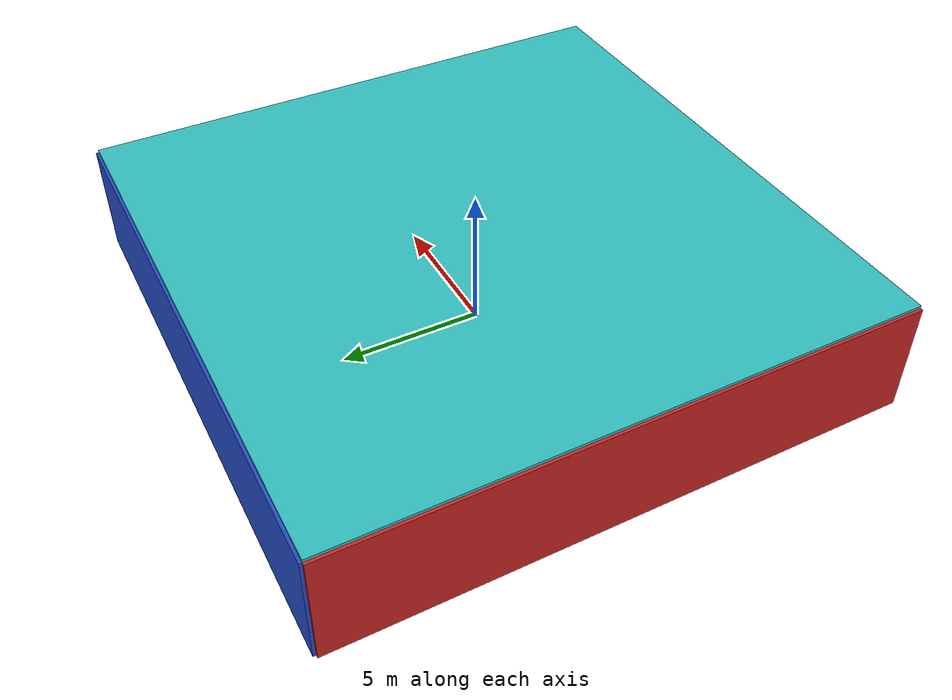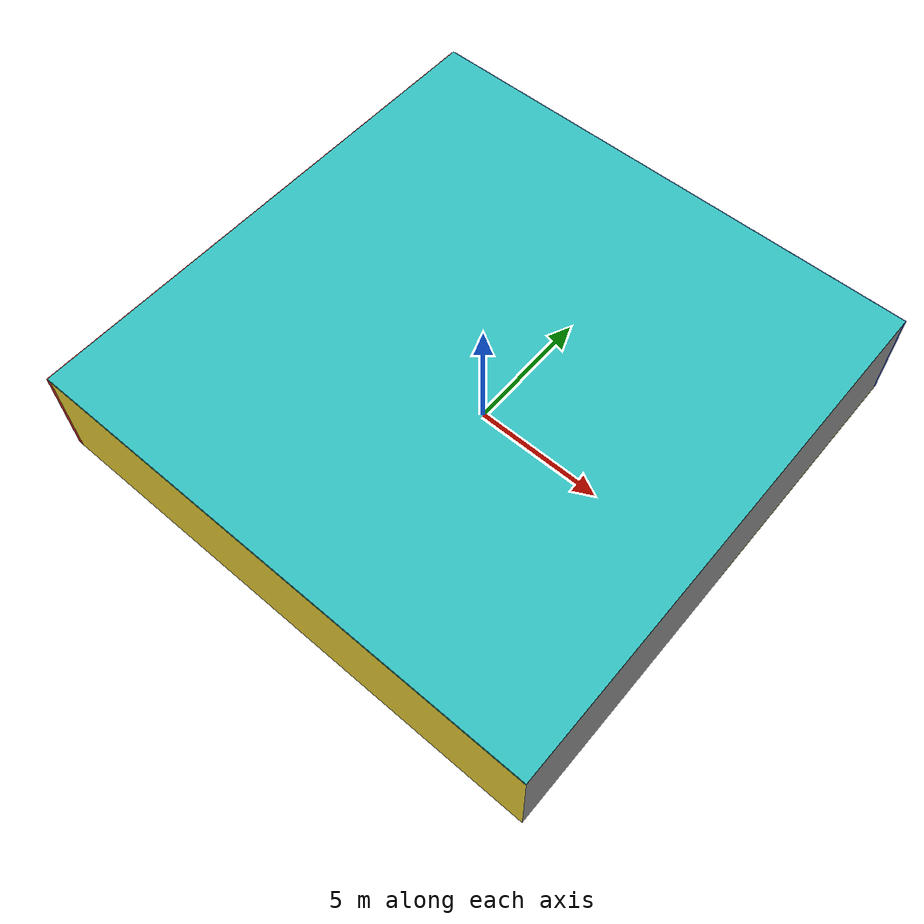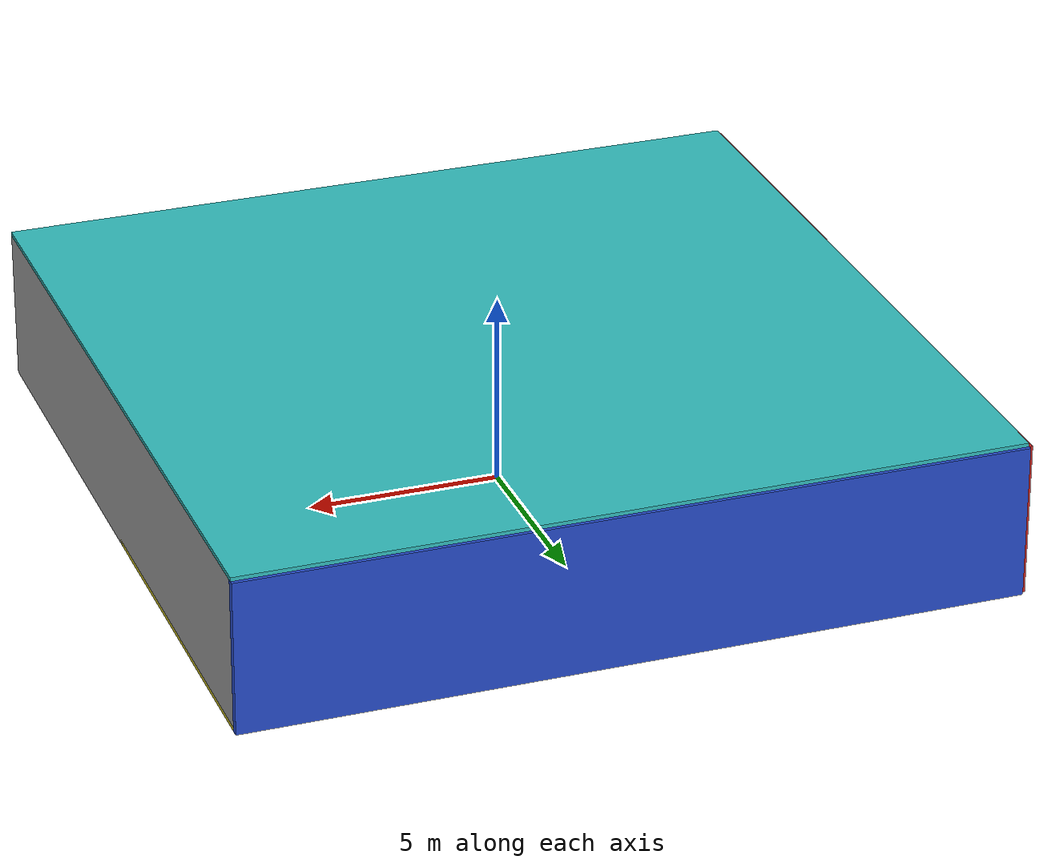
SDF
<sdf version="1.4">
 <world name="default">
  <physics type="ode">
   <max_step_size>0.001</max_step_size>
   <real_time_factor>1</real_time_factor>
   <real_time_update_rate>1000</real_time_update_rate>
   <gravity>0 0 -9.8</gravity>
  </physics>
  <scene><ambient>0.4 0.4 0.4 1</ambient><background>0.7 0.7 0.7 1</background><shadows>1</shadows></scene>
  <model name="Surrounding">
   <static>1</static>
   <link name="Ceiling">
    <collision name="Ceiling_Collision"><geometry><box><size>20 20 0.1</size></box></geometry></collision>
    <visual name="Ceiling_Visual">
     <geometry><box><size>20 20 0.1</size></box></geometry>
     <material>
      <script><uri>file://media/materials/scripts/gazebo.material</uri><name>Gazebo/Turquoise</name></script>
     </material>
    </visual>
    <pose>0 0 4.05 0 0 0</pose>
   </link>
   <link name="Wall_South">
    <collision name="Wall_South_Collision">
     <geometry><box><size>20 0 4</size></box></geometry>
     <pose>0 0 2 0 -0 0</pose>
    </collision>
    <visual name="Wall_South_Visual">
     <pose>0 0 2 0 -0 0</pose>
     <geometry><box><size>20 0 4</size></box></geometry>
     <material>
      <script><uri>file://media/materials/scripts/gazebo.material</uri><name>Gazebo/ZincYellow</name></script>
     </material>
    </visual>
    <velocity_decay><linear>0</linear><angular>0</angular></velocity_decay>
    <pose>0 -10 0 0 -0 0</pose>
   </link>
   <link name="Wall_East">
    <collision name="Wall_21_Collision">
     <geometry><box><size>20 0 4</size></box></geometry>
     <pose>0 0 2 0 -0 0</pose>
    </collision>
    <visual name="Wall_21_Visual">
     <pose>0 0 2 0 -0 0</pose>
     <geometry><box><size>20 0 4</size></box></geometry>
     <material>
      <script><uri>file://media/materials/scripts/gazebo.material</uri><name>Gazebo/GreyGradientSky</name></script>
     </material>
    </visual>
    <velocity_decay><linear>0</linear><angular>0</angular></velocity_decay>
    <pose>10 0 0 0 -0 1.5708</pose>
   </link>
   <link name="Wall_North">
    <collision name="Wall_22_Collision">
     <geometry><box><size>20 0.2 4</size></box></geometry>
     <pose>0 0 2 0 -0 0</pose>
    </collision>
    <visual name="Wall_22_Visual">
     <pose>0 0 2 0 -0 0</pose>
     <geometry><box><size>20 0.2 4</size></box></geometry>
     <material>
      <script><uri>file://media/materials/scripts/gazebo.material</uri><name>Gazebo/BlueLaser</name></script>
     </material>
    </visual>
    <velocity_decay><linear>0</linear><angular>0</angular></velocity_decay>
    <pose>0 10 0 0 -0 0</pose>
   </link>
   <link name="Wall_West">
    <collision name="Wall_23_Collision">
     <geometry><box><size>20 0.2 4</size></box></geometry>
     <pose>0 0 2 0 -0 0</pose>
    </collision>
    <visual name="Wall_23_Visual">
     <pose>0 0 2 0 -0 0</pose>
     <geometry><box><size>20 0.2 4</size></box></geometry>
     <material>
      <script><uri>file://media/materials/scripts/gazebo.material</uri><name>Gazebo/Red</name></script>
     </material>
    </visual>
    <velocity_decay><linear>0</linear><angular>0</angular></velocity_decay>
    <pose>-10 0 0 0 0 -1.5708</pose>
   </link>
   <link name="Ground_link">
    <collision name="collision">
     <pose>0 0 .05 0 -0 0</pose>
     <geometry><box><size>20 20 0.1</size></box></geometry>
    </collision>
    <visual name="visual">
     <pose>0 0 .05 0 -0 0</pose>
     <geometry><box><size>20 20 0.1</size></box></geometry>
     <material>
      <script><uri>file://media/materials/scripts/gazebo.material</uri><name>Gazebo/YellowGlow</name></script>
     </material>
    </visual>
   </link>
   <static>1</static>
  </model>
  <spherical_coordinates>
   <surface_model>EARTH_WGS84</surface_model>
   <latitude_deg>0</latitude_deg>
   <longitude_deg>0</longitude_deg>
   <elevation>0</elevation>
   <heading_deg>0</heading_deg>
  </spherical_coordinates>
  <light name="lightball_0" type="diffuse">
   <diffuse>0.8 0.8 0.8 1</diffuse>
   <specular>0.2 0.2 0.2 1</specular>
   <attenuation>
    <range>100</range>
    <constant>0.7</constant>
    <linear>0.01</linear>
    <quadratic>0.001</quadratic>
   </attenuation>
   <direction>-0.5 0.1 -0.9</direction>
   <pose>1.68001481317 7.19881581696 3.30089076727 0 0 0</pose>
  </light>
  <light name="lightball_1" type="diffuse">
   <diffuse>0.8 0.8 0.8 1</diffuse>
   <specular>0.2 0.2 0.2 1</specular>
   <attenuation>
    <range>100</range>
    <constant>0.7</constant>
    <linear>0.01</linear>
    <quadratic>0.001</quadratic>
   </attenuation>
   <direction>-0.5 0.1 -0.9</direction>
   <pose>-4.19076154036 5.50088436854 0.800621861568 0 0 0</pose>
  </light>
  <light name="lightball_2" type="diffuse">
   <diffuse>0.8 0.8 0.8 1</diffuse>
   <specular>0.2 0.2 0.2 1</specular>
   <attenuation>
    <range>100</range>
    <constant>0.7</constant>
    <linear>0.01</linear>
    <quadratic>0.001</quadratic>
   </attenuation>
   <direction>-0.5 0.1 -0.9</direction>
   <pose>8.81561236535 -0.115923582817 0.751257899261 0 0 0</pose>
  </light>
  <light name="lightball_3" type="diffuse">
   <diffuse>0.8 0.8 0.8 1</diffuse>
   <specular>0.2 0.2 0.2 1</specular>
   <attenuation>
    <range>100</range>
    <constant>0.7</constant>
    <linear>0.01</linear>
    <quadratic>0.001</quadratic>
   </attenuation>
   <direction>-0.5 0.1 -0.9</direction>
   <pose>9.44811625912 6.22129444993 2.65586030773 0 0 0</pose>
  </light>
  <light name="lightball_4" type="diffuse">
   <diffuse>0.8 0.8 0.8 1</diffuse>
   <specular>0.2 0.2 0.2 1</specular>
   <attenuation>
    <range>100</range>
    <constant>0.7</constant>
    <linear>0.01</linear>
    <quadratic>0.001</quadratic>
   </attenuation>
   <direction>-0.5 0.1 -0.9</direction>
   <pose>-1.05493223473 1.27459210393 1.72244936592 0 0 0</pose>
  </light>
  <light name="lightball_5" type="diffuse">
   <diffuse>0.8 0.8 0.8 1</diffuse>
   <specular>0.2 0.2 0.2 1</specular>
   <attenuation>
    <range>100</range>
    <constant>0.7</constant>
    <linear>0.01</linear>
    <quadratic>0.001</quadratic>
   </attenuation>
   <direction>-0.5 0.1 -0.9</direction>
   <pose>4.4634251691 -9.1104631827 3.54637427525 0 0 0</pose>
  </light>
  <light name="lightball_6" type="diffuse">
   <diffuse>0.8 0.8 0.8 1</diffuse>
   <specular>0.2 0.2 0.2 1</specular>
   <attenuation>
    <range>100</range>
    <constant>0.7</constant>
    <linear>0.01</linear>
    <quadratic>0.001</quadratic>
   </attenuation>
   <direction>-0.5 0.1 -0.9</direction>
   <pose>-8.76156713785 -4.20245891192 2.24758497729 0 0 0</pose>
  </light>
  <light name="lightball_7" type="diffuse">
   <diffuse>0.8 0.8 0.8 1</diffuse>
   <specular>0.2 0.2 0.2 1</specular>
   <attenuation>
    <range>100</range>
    <constant>0.7</constant>
    <linear>0.01</linear>
    <quadratic>0.001</quadratic>
   </attenuation>
   <direction>-0.5 0.1 -0.9</direction>
   <pose>7.24591050338 -1.93596755067 1.12365611031 0 0 0</pose>
  </light>
  <include><uri>model://table</uri><pose>-7.60554371956 -7.8336209942 0 0 0 1.31980462989</pose></include>
  <include><uri>model://cabinet</uri><pose>-7.26966096507 -4.72525589814 0 0 0 2.12897975566</pose></include>
  <include><uri>model://cabinet</uri><pose>-7.90106151387 4.34454632745 0 0 0 1.11736950157</pose></include>
  <include><uri>model://cabinet</uri><pose>-0.786135656223 -7.10125345623 0 0 0 2.64948034733</pose></include>
  <include>
   <uri>model://construction_cone</uri>
   <pose>-0.762126621393 5.09516278571 0 0 0 1.54848329008</pose>
  </include>
  <include><uri>model://cabinet</uri><pose>1.2190758823 -1.3563899503 0 0 0 0.989827943827</pose></include>
  <include><uri>model://cabinet</uri><pose>0.796547715075 7.94931681595 0 0 0 0.356871347152</pose></include>
 </world>
</sdf>

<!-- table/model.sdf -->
<sdf version="1.5">
  <model name="table">
    <static>true</static>
    <link name="link">
      <collision name="surface">
        <pose>0 0 1.0 0 0 0</pose>
        <geometry>
          <box>
            <size>1.5 0.8 0.03</size>
          </box>
        </geometry>
        <surface>
          <friction>
            <ode>
              <mu>0.6</mu>
              <mu2>0.6</mu2>
            </ode>
          </friction>
        </surface>
      </collision>
      <visual name="visual1">
        <pose>0 0 1.0 0 0 0</pose>
        <geometry>
          <box>
            <size>1.5 0.8 0.03</size>
          </box>
        </geometry>
        <material>
          <script>
            <uri>model://media/materials/scripts/gazebo.material</uri>
            <name>Gazebo/Wood</name>
          </script>
        </material>
      </visual>
      <collision name="front_left_leg">
        <pose>0.68 0.38 0.5 0 0 0</pose>
        <geometry>
          <cylinder>
            <radius>0.02</radius>
            <length>1.0</length>
          </cylinder>
        </geometry>
      </collision>
      <visual name="front_left_leg">
        <pose>0.68 0.38 0.5 0 0 0</pose>
        <geometry>
          <cylinder>
            <radius>0.02</radius>
            <length>1.0</length>
          </cylinder>
        </geometry>
        <material>
          <script>
            <uri>model://media/materials/scripts/gazebo.material</uri>
            <name>Gazebo/Grey</name>
          </script>
        </material>
      </visual>
      <collision name="front_right_leg">
        <pose>0.68 -0.38 0.5 0 0 0</pose>
        <geometry>
          <cylinder>
            <radius>0.02</radius>
            <length>1.0</length>
          </cylinder>
        </geometry>
      </collision>
      <visual name="front_right_leg">
        <pose>0.68 -0.38 0.5 0 0 0</pose>
        <geometry>
          <cylinder>
            <radius>0.02</radius>
            <length>1.0</length>
          </cylinder>
        </geometry>
        <material>
          <script>
            <uri>model://media/materials/scripts/gazebo.material</uri>
            <name>Gazebo/Grey</name>
          </script>
        </material>
      </visual>
      <collision name="back_right_leg">
        <pose>-0.68 -0.38 0.5 0 0 0</pose>
        <geometry>
          <cylinder>
            <radius>0.02</radius>
            <length>1.0</length>
          </cylinder>
        </geometry>
      </collision>
      <visual name="back_right_leg">
        <pose>-0.68 -0.38 0.5 0 0 0</pose>
        <geometry>
          <cylinder>
            <radius>0.02</radius>
            <length>1.0</length>
          </cylinder>
        </geometry>
        <material>
          <script>
            <uri>model://media/materials/scripts/gazebo.material</uri>
            <name>Gazebo/Grey</name>
          </script>
        </material>
      </visual>
      <collision name="back_left_leg">
        <pose>-0.68 0.38 0.5 0 0 0</pose>
        <geometry>
          <cylinder>
            <radius>0.02</radius>
            <length>1.0</length>
          </cylinder>
        </geometry>
      </collision>
      <visual name="back_left_leg">
        <pose>-0.68 0.38 0.5 0 0 0</pose>
        <geometry>
          <cylinder>
            <radius>0.02</radius>
            <length>1.0</length>
          </cylinder>
        </geometry>
        <material>
          <script>
            <uri>model://media/materials/scripts/gazebo.material</uri>
            <name>Gazebo/Grey</name>
          </script>
        </material>
      </visual>
    </link>
  </model>
</sdf>

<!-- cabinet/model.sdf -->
<sdf version="1.5">
  <model name="cabinet">
    <static>true</static>
    <link name="cabinet_bottom_plate">
      <inertial>
        <pose>0 0 -1 0 0 0</pose>
        <inertia>
          <ixx>2.050000</ixx>
          <ixy>0</ixy>
          <ixz>0</ixz>
          <iyy>2.050000</iyy>
          <iyz>0</iyz>
          <izz>2.050000</izz>
        </inertia>
        <mass>25.000000</mass>
      </inertial>
      <collision name="cabinet_bottom_plate_geom">
        <pose>0 0 0.010000 0 0 0</pose>
        <geometry>
          <box>
            <size>0.450000 0.450000 0.020000</size>
          </box>
        </geometry>
      </collision>
      <visual name="cabinet_bottom_plate_geom_visual">
        <pose>0 0 0.010000 0 0 0</pose>
        <geometry>
          <box>
            <size>0.450000 0.450000 0.020000</size>
          </box>
        </geometry>
        <material>
          <script>
            <uri>model://media/materials/scripts/gazebo.material</uri>
            <name>Gazebo/Wood</name>
          </script>
        </material>
      </visual>
      <collision name="cabinet_bottom_plate_geom_cabinet_back_plate">
        <pose>0.235000 0 0.510000 0 0 0</pose>
        <geometry>
          <box>
            <size>0.020000 0.450000 1.020000</size>
          </box>
        </geometry>
      </collision>
      <visual name="cabinet_bottom_plate_geom_cabinet_back_plate_visual">
        <pose>0.235000 0 0.510000 0 0 0</pose>
        <geometry>
          <box>
            <size>0.020000 0.450000 1.020000</size>
          </box>
        </geometry>
        <material>
          <script>
            <uri>model://media/materials/scripts/gazebo.material</uri>
            <name>Gazebo/Wood</name>
          </script>
        </material>
      </visual>
      <collision name="cabinet_bottom_plate_geom_cabinet_left_plate">
        <pose>0 0.235000 0.510000 0 0 0</pose>
        <geometry>
          <box>
            <size>0.450000 0.020000 1.020000</size>
          </box>
        </geometry>
      </collision>
      <visual name="cabinet_bottom_plate_geom_cabinet_left_plate_visual">
        <pose>0 0.235000 0.510000 0 0 0</pose>
        <geometry>
          <box>
            <size>0.450000 0.020000 1.020000</size>
          </box>
        </geometry>
        <material>
          <script>
            <uri>model://media/materials/scripts/gazebo.material</uri>
            <name>Gazebo/Wood</name>
          </script>
        </material>
      </visual>
      <collision name="cabinet_bottom_plate_geom_cabinet_middle_plate">
        <pose>0 0 0.510000 0 0 0</pose>
        <geometry>
          <box>
            <size>0.450000 0.450000 0.020000</size>
          </box>
        </geometry>
      </collision>
      <visual name="cabinet_bottom_plate_geom_cabinet_middle_plate_visual">
        <pose>0 0 0.510000 0 0 0</pose>
        <geometry>
          <box>
            <size>0.450000 0.450000 0.020000</size>
          </box>
        </geometry>
        <material>
          <script>
            <uri>model://media/materials/scripts/gazebo.material</uri>
            <name>Gazebo/Wood</name>
          </script>
        </material>
      </visual>
      <collision name="cabinet_bottom_plate_geom_cabinet_right_plate">
        <pose>0 -0.235000 0.510000 0 0 0</pose>
        <geometry>
          <box>
            <size>0.450000 0.020000 1.020000</size>
          </box>
        </geometry>
      </collision>
      <visual name="cabinet_bottom_plate_geom_cabinet_right_plate_visual">
        <pose>0 -0.235000 0.510000 0 0 0</pose>
        <geometry>
          <box>
            <size>0.450000 0.020000 1.020000</size>
          </box>
        </geometry>
        <material>
          <script>
            <uri>model://media/materials/scripts/gazebo.material</uri>
            <name>Gazebo/Wood</name>
          </script>
        </material>
      </visual>
      <collision name="cabinet_bottom_plate_geom_cabinet_top_plate">
        <pose>0 0 1.010000 0 0 0</pose>
        <geometry>
          <box>
            <size>0.450000 0.450000 0.020000</size>
          </box>
        </geometry>
      </collision>
      <visual name="cabinet_bottom_plate_geom_cabinet_top_plate_visual">
        <pose>0 0 1.010000 0 0 0</pose>
        <geometry>
          <box>
            <size>0.450000 0.450000 0.020000</size>
          </box>
        </geometry>
        <material>
          <script>
            <uri>model://media/materials/scripts/gazebo.material</uri>
            <name>Gazebo/Wood</name>
          </script>
        </material>
      </visual>
    </link>
  </model>
</sdf>

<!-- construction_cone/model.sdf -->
<sdf version="1.5">
  <model name="Construction Cone">
    <link name="link">
      <collision name="collision">
        <geometry>
          <mesh>
            <scale>10 10 10</scale>
            <uri>file://isr-testbed/construction_cone/meshes/construction_cone.dae</uri>
          </mesh>
        </geometry>
      </collision>
      <visual name="visual">
        <geometry>
          <mesh>
            <scale>10 10 10</scale>
            <uri>file://isr-testbed/construction_cone/meshes/construction_cone.dae</uri>
          </mesh>
        </geometry>
      </visual>
    </link>
  </model>
</sdf>
